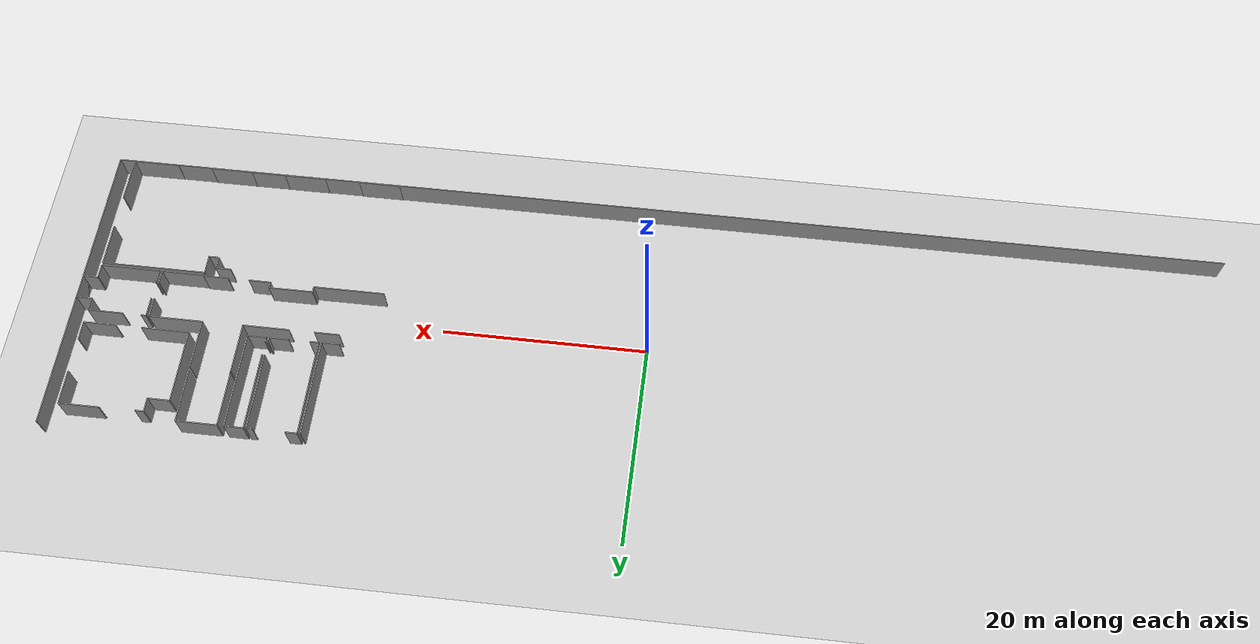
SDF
<sdf version="1.6">
 <world name="default">
  <model name="ground_plane">
   <static>1</static>
   <link name="link">
    <collision name="collision">
     <geometry><plane><normal>0 0 1</normal><size>100 100</size></plane></geometry>
     <surface><friction><ode><mu>100</mu><mu2>50</mu2></ode></friction></surface>
    </collision>
    <visual name="visual">
     <cast_shadows>0</cast_shadows>
     <geometry><plane><normal>0 0 1</normal><size>100 100</size></plane></geometry>
     <material>
      <script><uri>file://media/materials/scripts/gazebo.material</uri><name>Gazebo/Grey</name></script>
     </material>
    </visual>
   </link>
  </model>
  <model name="50056456">
   <static>1</static>
   <link name="Wall_21">
    <collision name="Wall_21_Collision">
     <geometry><box><size>4.18794948032 0.1 2.5</size></box></geometry>
     <pose>2.09397474016 0 1.25 0 0 0</pose>
    </collision>
    <visual name="Wall_21_Visual">
     <pose>2.09397474016 0 1.25 0 0 0</pose>
     <geometry><box><size>4.18794948032 0.1 2.5</size></box></geometry>
     <material>
      <script><uri>file://media/materials/scripts/gazebo.material</uri><name>Gazebo/Grey</name></script>
      <ambient>1 1 1 1</ambient>
     </material>
    </visual>
    <pose>103.634892802 -17.1229871329 0 0 0 3.14159265359</pose>
   </link>
   <link name="Wall_22">
    <collision name="Wall_22_Collision">
     <geometry><box><size>0.0789475913361 0.1 2.5</size></box></geometry>
     <pose>0.0394737956681 0 1.25 0 0 0</pose>
    </collision>
    <visual name="Wall_22_Visual">
     <pose>0.0394737956681 0 1.25 0 0 0</pose>
     <geometry><box><size>0.0789475913361 0.1 2.5</size></box></geometry>
     <material>
      <script><uri>file://media/materials/scripts/gazebo.material</uri><name>Gazebo/Grey</name></script>
      <ambient>1 1 1 1</ambient>
     </material>
    </visual>
    <pose>99.4469433221 -17.1229871329 0 0 0 1.57079632679</pose>
   </link>
   <link name="Wall_23">
    <collision name="Wall_23_Collision">
     <geometry><box><size>2.44263169932 0.1 2.5</size></box></geometry>
     <pose>1.22131584966 0 1.25 0 0 0</pose>
    </collision>
    <visual name="Wall_23_Visual">
     <pose>1.22131584966 0 1.25 0 0 0</pose>
     <geometry><box><size>2.44263169932 0.1 2.5</size></box></geometry>
     <material>
      <script><uri>file://media/materials/scripts/gazebo.material</uri><name>Gazebo/Grey</name></script>
      <ambient>1 1 1 1</ambient>
     </material>
    </visual>
    <pose>99.4469433221 -17.0440395416 0 0 0 3.14159265359</pose>
   </link>
   <link name="Wall_24">
    <collision name="Wall_24_Collision">
     <geometry><box><size>2.13090730435 0.1 2.5</size></box></geometry>
     <pose>1.06545365217 0 1.25 0 0 0</pose>
    </collision>
    <visual name="Wall_24_Visual">
     <pose>1.06545365217 0 1.25 0 0 0</pose>
     <geometry><box><size>2.13090730435 0.1 2.5</size></box></geometry>
     <material>
      <script><uri>file://media/materials/scripts/gazebo.material</uri><name>Gazebo/Grey</name></script>
      <ambient>1 1 1 1</ambient>
     </material>
    </visual>
    <pose>94.9321914733 -17.0440395416 0 0 0 3.14159265359</pose>
   </link>
   <link name="Wall_25">
    <collision name="Wall_25_Collision">
     <geometry><box><size>0.598036475143 0.1 2.5</size></box></geometry>
     <pose>0.299018237571 0 1.25 0 0 0</pose>
    </collision>
    <visual name="Wall_25_Visual">
     <pose>0.299018237571 0 1.25 0 0 0</pose>
     <geometry><box><size>0.598036475143 0.1 2.5</size></box></geometry>
     <material>
      <script><uri>file://media/materials/scripts/gazebo.material</uri><name>Gazebo/Grey</name></script>
      <ambient>1 1 1 1</ambient>
     </material>
    </visual>
    <pose>92.801284169 -17.0440395416 0 0 0 1.57079632679</pose>
   </link>
   <link name="Wall_26">
    <collision name="Wall_26_Collision">
     <geometry><box><size>4.31263923831 0.1 2.5</size></box></geometry>
     <pose>2.15631961915 0 1.25 0 0 0</pose>
    </collision>
    <visual name="Wall_26_Visual">
     <pose>2.15631961915 0 1.25 0 0 0</pose>
     <geometry><box><size>4.31263923831 0.1 2.5</size></box></geometry>
     <material>
      <script><uri>file://media/materials/scripts/gazebo.material</uri><name>Gazebo/Grey</name></script>
      <ambient>1 1 1 1</ambient>
     </material>
    </visual>
    <pose>92.801284169 -16.4460030664 0 0 0 3.14159265359</pose>
   </link>
   <link name="Wall_27">
    <collision name="Wall_27_Collision">
     <geometry><box><size>0.556021447994 0.1 2.5</size></box></geometry>
     <pose>0.278010723997 0 1.25 0 0 0</pose>
    </collision>
    <visual name="Wall_27_Visual">
     <pose>0.278010723997 0 1.25 0 0 0</pose>
     <geometry><box><size>0.556021447994 0.1 2.5</size></box></geometry>
     <material>
      <script><uri>file://media/materials/scripts/gazebo.material</uri><name>Gazebo/Grey</name></script>
      <ambient>1 1 1 1</ambient>
     </material>
    </visual>
    <pose>88.4886449307 -16.4460030664 0 0 0 -1.57079632679</pose>
   </link>
   <link name="Wall_28">
    <collision name="Wall_28_Collision">
     <geometry><box><size>6.95738354807 0.1 2.5</size></box></geometry>
     <pose>3.47869177403 0 1.25 0 0 0</pose>
    </collision>
    <visual name="Wall_28_Visual">
     <pose>3.47869177403 0 1.25 0 0 0</pose>
     <geometry><box><size>6.95738354807 0.1 2.5</size></box></geometry>
     <material>
      <script><uri>file://media/materials/scripts/gazebo.material</uri><name>Gazebo/Grey</name></script>
      <ambient>1 1 1 1</ambient>
     </material>
    </visual>
    <pose>88.4886449307 -17.0020245144 0 0 0 3.14159265359</pose>
   </link>
   <link name="Wall_69">
    <collision name="Wall_69_Collision">
     <geometry><box><size>2.43399151229 0.1 2.5</size></box></geometry>
     <pose>1.21699575614 0 1.25 0 0 0</pose>
    </collision>
    <visual name="Wall_69_Visual">
     <pose>1.21699575614 0 1.25 0 0 0</pose>
     <geometry><box><size>2.43399151229 0.1 2.5</size></box></geometry>
     <material>
      <script><uri>file://media/materials/scripts/gazebo.material</uri><name>Gazebo/Grey</name></script>
      <ambient>1 1 1 1</ambient>
     </material>
    </visual>
    <pose>84.9446435076 -12.0830474448 0 0 0 0.0</pose>
   </link>
   <link name="Wall_70">
    <collision name="Wall_70_Collision">
     <geometry><box><size>4.53626760862 0.1 2.5</size></box></geometry>
     <pose>2.26813380431 0 1.25 0 0 0</pose>
    </collision>
    <visual name="Wall_70_Visual">
     <pose>2.26813380431 0 1.25 0 0 0</pose>
     <geometry><box><size>4.53626760862 0.1 2.5</size></box></geometry>
     <material>
      <script><uri>file://media/materials/scripts/gazebo.material</uri><name>Gazebo/Grey</name></script>
      <ambient>1 1 1 1</ambient>
     </material>
    </visual>
    <pose>89.8510838352 -12.0830474448 0 0 0 0.0</pose>
   </link>
   <link name="Wall_71">
    <collision name="Wall_71_Collision">
     <geometry><box><size>4.99047038195 0.1 2.5</size></box></geometry>
     <pose>2.49523519097 0 1.25 0 0 0</pose>
    </collision>
    <visual name="Wall_71_Visual">
     <pose>2.49523519097 0 1.25 0 0 0</pose>
     <geometry><box><size>4.99047038195 0.1 2.5</size></box></geometry>
     <material>
      <script><uri>file://media/materials/scripts/gazebo.material</uri><name>Gazebo/Grey</name></script>
      <ambient>1 1 1 1</ambient>
     </material>
    </visual>
    <pose>94.3873514438 -12.0830474448 0 0 0 1.57079632679</pose>
   </link>
   <link name="Wall_72">
    <collision name="Wall_72_Collision">
     <geometry><box><size>0.0659026030681 0.1 2.5</size></box></geometry>
     <pose>0.0329513015341 0 1.25 0 0 0</pose>
    </collision>
    <visual name="Wall_72_Visual">
     <pose>0.0329513015341 0 1.25 0 0 0</pose>
     <geometry><box><size>0.0659026030681 0.1 2.5</size></box></geometry>
     <material>
      <script><uri>file://media/materials/scripts/gazebo.material</uri><name>Gazebo/Grey</name></script>
      <ambient>1 1 1 1</ambient>
     </material>
    </visual>
    <pose>94.3873514438 -7.09257706284 0 0 0 0.0</pose>
   </link>
   <link name="Wall_73">
    <collision name="Wall_73_Collision">
     <geometry><box><size>4.96404157455 0.1 2.5</size></box></geometry>
     <pose>2.48202078727 0 1.25 0 0 0</pose>
    </collision>
    <visual name="Wall_73_Visual">
     <pose>2.48202078727 0 1.25 0 0 0</pose>
     <geometry><box><size>4.96404157455 0.1 2.5</size></box></geometry>
     <material>
      <script><uri>file://media/materials/scripts/gazebo.material</uri><name>Gazebo/Grey</name></script>
      <ambient>1 1 1 1</ambient>
     </material>
    </visual>
    <pose>98.3603127409 -7.09257706284 0 0 0 -1.57079632679</pose>
   </link>
   <link name="Wall_74">
    <collision name="Wall_74_Collision">
     <geometry><box><size>5.26017974977 0.1 2.5</size></box></geometry>
     <pose>2.63008987489 0 1.25 0 0 0</pose>
    </collision>
    <visual name="Wall_74_Visual">
     <pose>2.63008987489 0 1.25 0 0 0</pose>
     <geometry><box><size>5.26017974977 0.1 2.5</size></box></geometry>
     <material>
      <script><uri>file://media/materials/scripts/gazebo.material</uri><name>Gazebo/Grey</name></script>
      <ambient>1 1 1 1</ambient>
     </material>
    </visual>
    <pose>98.3603127409 -12.0566186374 0 0 0 0.0</pose>
   </link>
   <link name="Wall_75">
    <collision name="Wall_75_Collision">
     <geometry><box><size>1.95928947168 0.1 2.5</size></box></geometry>
     <pose>0.979644735839 0 1.25 0 0 0</pose>
    </collision>
    <visual name="Wall_75_Visual">
     <pose>0.979644735839 0 1.25 0 0 0</pose>
     <geometry><box><size>1.95928947168 0.1 2.5</size></box></geometry>
     <material>
      <script><uri>file://media/materials/scripts/gazebo.material</uri><name>Gazebo/Grey</name></script>
      <ambient>1 1 1 1</ambient>
     </material>
    </visual>
    <pose>103.620492491 -12.0566186374 0 0 0 -1.57079632679</pose>
   </link>
   <link name="Wall_76">
    <collision name="Wall_76_Collision">
     <geometry><box><size>1.33236078006 0.1 2.5</size></box></geometry>
     <pose>0.666180390029 0 1.25 0 0 0</pose>
    </collision>
    <visual name="Wall_76_Visual">
     <pose>0.666180390029 0 1.25 0 0 0</pose>
     <geometry><box><size>1.33236078006 0.1 2.5</size></box></geometry>
     <material>
      <script><uri>file://media/materials/scripts/gazebo.material</uri><name>Gazebo/Grey</name></script>
      <ambient>1 1 1 1</ambient>
     </material>
    </visual>
    <pose>103.620492491 -15.7907041752 0 0 0 -1.55998799896</pose>
   </link>
   <link name="Wall_168">
    <collision name="Wall_168_Collision">
     <geometry><box><size>1.74701193532 0.1 2.5</size></box></geometry>
     <pose>0.873505967659 0 1.25 0 0 0</pose>
    </collision>
    <visual name="Wall_168_Visual">
     <pose>0.873505967659 0 1.25 0 0 0</pose>
     <geometry><box><size>1.74701193532 0.1 2.5</size></box></geometry>
     <material>
      <script><uri>file://media/materials/scripts/gazebo.material</uri><name>Gazebo/Grey</name></script>
      <ambient>1 1 1 1</ambient>
     </material>
    </visual>
    <pose>86.475650767 -11.0680795914 0 0 0 3.14159265359</pose>
   </link>
   <link name="Wall_173">
    <collision name="Wall_173_Collision">
     <geometry><box><size>9.57282273588 0.1 2.5</size></box></geometry>
     <pose>4.78641136794 0 1.25 0 0 0</pose>
    </collision>
    <visual name="Wall_173_Visual">
     <pose>4.78641136794 0 1.25 0 0 0</pose>
     <geometry><box><size>9.57282273588 0.1 2.5</size></box></geometry>
     <material>
      <script><uri>file://media/materials/scripts/gazebo.material</uri><name>Gazebo/Grey</name></script>
      <ambient>1 1 1 1</ambient>
     </material>
    </visual>
    <pose>86.4671799954 -1.49526060329 0 0 0 -1.56991144958</pose>
   </link>
   <link name="Wall_174">
    <collision name="Wall_174_Collision">
     <geometry><box><size>1.94607506798 0.1 2.5</size></box></geometry>
     <pose>0.973037533989 0 1.25 0 0 0</pose>
    </collision>
    <visual name="Wall_174_Visual">
     <pose>0.973037533989 0 1.25 0 0 0</pose>
     <geometry><box><size>1.94607506798 0.1 2.5</size></box></geometry>
     <material>
      <script><uri>file://media/materials/scripts/gazebo.material</uri><name>Gazebo/Grey</name></script>
      <ambient>1 1 1 1</ambient>
     </material>
    </visual>
    <pose>91.6089383582 -11.0511380482 0 0 0 3.14159265359</pose>
   </link>
   <link name="Wall_175">
    <collision name="Wall_175_Collision">
     <geometry><box><size>0.868762335561 0.1 2.5</size></box></geometry>
     <pose>0.434381167781 0 1.25 0 0 0</pose>
    </collision>
    <visual name="Wall_175_Visual">
     <pose>0.434381167781 0 1.25 0 0 0</pose>
     <geometry><box><size>0.868762335561 0.1 2.5</size></box></geometry>
     <material>
      <script><uri>file://media/materials/scripts/gazebo.material</uri><name>Gazebo/Grey</name></script>
      <ambient>1 1 1 1</ambient>
     </material>
    </visual>
    <pose>87.6247956426 -11.0511380482 0 0 0 3.14159265359</pose>
   </link>
   <link name="Wall_176">
    <collision name="Wall_176_Collision">
     <geometry><box><size>9.57281898808 0.1 2.5</size></box></geometry>
     <pose>4.78640949404 0 1.25 0 0 0</pose>
    </collision>
    <visual name="Wall_176_Visual">
     <pose>4.78640949404 0 1.25 0 0 0</pose>
     <geometry><box><size>9.57281898808 0.1 2.5</size></box></geometry>
     <material>
      <script><uri>file://media/materials/scripts/gazebo.material</uri><name>Gazebo/Grey</name></script>
      <ambient>1 1 1 1</ambient>
     </material>
    </visual>
    <pose>86.7560333071 -11.0511380482 0 0 0 1.57079632679</pose>
   </link>
   <link name="Wall_177">
    <collision name="Wall_177_Collision">
     <geometry><box><size>1.15846272437 0.1 2.5</size></box></geometry>
     <pose>0.579231362185 0 1.25 0 0 0</pose>
    </collision>
    <visual name="Wall_177_Visual">
     <pose>0.579231362185 0 1.25 0 0 0</pose>
     <geometry><box><size>1.15846272437 0.1 2.5</size></box></geometry>
     <material>
      <script><uri>file://media/materials/scripts/gazebo.material</uri><name>Gazebo/Grey</name></script>
      <ambient>1 1 1 1</ambient>
     </material>
    </visual>
    <pose>86.7560333071 -1.47831906008 0 0 0 0.0</pose>
   </link>
   <link name="Wall_178">
    <collision name="Wall_178_Collision">
     <geometry><box><size>0.590921026996 0.1 2.5</size></box></geometry>
     <pose>0.295460513498 0 1.25 0 0 0</pose>
    </collision>
    <visual name="Wall_178_Visual">
     <pose>0.295460513498 0 1.25 0 0 0</pose>
     <geometry><box><size>0.590921026996 0.1 2.5</size></box></geometry>
     <material>
      <script><uri>file://media/materials/scripts/gazebo.material</uri><name>Gazebo/Grey</name></script>
      <ambient>1 1 1 1</ambient>
     </material>
    </visual>
    <pose>90.9995510491 -1.47831906008 0 0 0 0.0</pose>
   </link>
   <link name="Wall_179">
    <collision name="Wall_179_Collision">
     <geometry><box><size>7.67350257935 0.1 2.5</size></box></geometry>
     <pose>3.83675128967 0 1.25 0 0 0</pose>
    </collision>
    <visual name="Wall_179_Visual">
     <pose>3.83675128967 0 1.25 0 0 0</pose>
     <geometry><box><size>7.67350257935 0.1 2.5</size></box></geometry>
     <material>
      <script><uri>file://media/materials/scripts/gazebo.material</uri><name>Gazebo/Grey</name></script>
      <ambient>1 1 1 1</ambient>
     </material>
    </visual>
    <pose>91.5904720761 -1.47831906008 0 0 0 -1.57079632679</pose>
   </link>
   <link name="Wall_180">
    <collision name="Wall_180_Collision">
     <geometry><box><size>0.512983577932 0.1 2.5</size></box></geometry>
     <pose>0.256491788966 0 1.25 0 0 0</pose>
    </collision>
    <visual name="Wall_180_Visual">
     <pose>0.256491788966 0 1.25 0 0 0</pose>
     <geometry><box><size>0.512983577932 0.1 2.5</size></box></geometry>
     <material>
      <script><uri>file://media/materials/scripts/gazebo.material</uri><name>Gazebo/Grey</name></script>
      <ambient>1 1 1 1</ambient>
     </material>
    </visual>
    <pose>91.5904720761 -10.5384869508 0 0 0 -1.53479074407</pose>
   </link>
   <link name="Wall_181">
    <collision name="Wall_181_Collision">
     <geometry><box><size>1.82104647912 0.1 2.5</size></box></geometry>
     <pose>0.910523239562 0 1.25 0 0 0</pose>
    </collision>
    <visual name="Wall_181_Visual">
     <pose>0.910523239562 0 1.25 0 0 0</pose>
     <geometry><box><size>1.82104647912 0.1 2.5</size></box></geometry>
     <material>
      <script><uri>file://media/materials/scripts/gazebo.material</uri><name>Gazebo/Grey</name></script>
      <ambient>1 1 1 1</ambient>
     </material>
    </visual>
    <pose>93.6729265669 -11.0460555852 0 0 0 3.14159265359</pose>
   </link>
   <link name="Wall_182">
    <collision name="Wall_182_Collision">
     <geometry><box><size>0.474532625177 0.1 2.5</size></box></geometry>
     <pose>0.237266312588 0 1.25 0 0 0</pose>
    </collision>
    <visual name="Wall_182_Visual">
     <pose>0.237266312588 0 1.25 0 0 0</pose>
     <geometry><box><size>0.474532625177 0.1 2.5</size></box></geometry>
     <material>
      <script><uri>file://media/materials/scripts/gazebo.material</uri><name>Gazebo/Grey</name></script>
      <ambient>1 1 1 1</ambient>
     </material>
    </visual>
    <pose>91.8518800878 -11.0460555852 0 0 0 1.57079632679</pose>
   </link>
   <link name="Wall_183">
    <collision name="Wall_183_Collision">
     <geometry><box><size>7.71636468366 0.1 2.5</size></box></geometry>
     <pose>3.85818234183 0 1.25 0 0 0</pose>
    </collision>
    <visual name="Wall_183_Visual">
     <pose>3.85818234183 0 1.25 0 0 0</pose>
     <geometry><box><size>7.71636468366 0.1 2.5</size></box></geometry>
     <material>
      <script><uri>file://media/materials/scripts/gazebo.material</uri><name>Gazebo/Grey</name></script>
      <ambient>1 1 1 1</ambient>
     </material>
    </visual>
    <pose>91.8518800878 -9.18638238757 0 0 0 1.57079632679</pose>
   </link>
   <link name="Wall_184">
    <collision name="Wall_184_Collision">
     <geometry><box><size>1.86746630751 0.1 2.5</size></box></geometry>
     <pose>0.933733153753 0 1.25 0 0 0</pose>
    </collision>
    <visual name="Wall_184_Visual">
     <pose>0.933733153753 0 1.25 0 0 0</pose>
     <geometry><box><size>1.86746630751 0.1 2.5</size></box></geometry>
     <material>
      <script><uri>file://media/materials/scripts/gazebo.material</uri><name>Gazebo/Grey</name></script>
      <ambient>1 1 1 1</ambient>
     </material>
    </visual>
    <pose>91.8518800878 -1.47001770391 0 0 0 0.0</pose>
   </link>
   <link name="Wall_185">
    <collision name="Wall_185_Collision">
     <geometry><box><size>9.57615039065 0.1 2.5</size></box></geometry>
     <pose>4.78807519533 0 1.25 0 0 0</pose>
    </collision>
    <visual name="Wall_185_Visual">
     <pose>4.78807519533 0 1.25 0 0 0</pose>
     <geometry><box><size>9.57615039065 0.1 2.5</size></box></geometry>
     <material>
      <script><uri>file://media/materials/scripts/gazebo.material</uri><name>Gazebo/Grey</name></script>
      <ambient>1 1 1 1</ambient>
     </material>
    </visual>
    <pose>93.7193463953 -1.47001770391 0 0 0 -1.57564378723</pose>
   </link>
   <link name="Wall_186">
    <collision name="Wall_186_Collision">
     <geometry><box><size>0.10317399812 0.1 2.5</size></box></geometry>
     <pose>0.0515869990598 0 1.25 0 0 0</pose>
    </collision>
    <visual name="Wall_186_Visual">
     <pose>0.0515869990598 0 1.25 0 0 0</pose>
     <geometry><box><size>0.10317399812 0.1 2.5</size></box></geometry>
     <material>
      <script><uri>file://media/materials/scripts/gazebo.material</uri><name>Gazebo/Grey</name></script>
      <ambient>1 1 1 1</ambient>
     </material>
    </visual>
    <pose>94.4691790975 -6.87132050859 0 0 0 3.14159265359</pose>
   </link>
   <link name="Wall_187">
    <collision name="Wall_187_Collision">
     <geometry><box><size>5.38571658492 0.1 2.5</size></box></geometry>
     <pose>2.69285829246 0 1.25 0 0 0</pose>
    </collision>
    <visual name="Wall_187_Visual">
     <pose>2.69285829246 0 1.25 0 0 0</pose>
     <geometry><box><size>5.38571658492 0.1 2.5</size></box></geometry>
     <material>
      <script><uri>file://media/materials/scripts/gazebo.material</uri><name>Gazebo/Grey</name></script>
      <ambient>1 1 1 1</ambient>
     </material>
    </visual>
    <pose>94.3660050994 -6.87132050859 0 0 0 1.57079632679</pose>
   </link>
   <link name="Wall_188">
    <collision name="Wall_188_Collision">
     <geometry><box><size>3.97702726741 0.1 2.5</size></box></geometry>
     <pose>1.98851363371 0 1.25 0 0 0</pose>
    </collision>
    <visual name="Wall_188_Visual">
     <pose>1.98851363371 0 1.25 0 0 0</pose>
     <geometry><box><size>3.97702726741 0.1 2.5</size></box></geometry>
     <material>
      <script><uri>file://media/materials/scripts/gazebo.material</uri><name>Gazebo/Grey</name></script>
      <ambient>1 1 1 1</ambient>
     </material>
    </visual>
    <pose>94.3660050994 -1.48560392366 0 0 0 0.0</pose>
   </link>
   <link name="Wall_189">
    <collision name="Wall_189_Collision">
     <geometry><box><size>5.38574709187 0.1 2.5</size></box></geometry>
     <pose>2.69287354594 0 1.25 0 0 0</pose>
    </collision>
    <visual name="Wall_189_Visual">
     <pose>2.69287354594 0 1.25 0 0 0</pose>
     <geometry><box><size>5.38574709187 0.1 2.5</size></box></geometry>
     <material>
      <script><uri>file://media/materials/scripts/gazebo.material</uri><name>Gazebo/Grey</name></script>
      <ambient>1 1 1 1</ambient>
     </material>
    </visual>
    <pose>98.3430323668 -1.48560392366 0 0 0 -1.56743050119</pose>
   </link>
   <link name="Wall_190">
    <collision name="Wall_190_Collision">
     <geometry><box><size>5.77232260087 0.1 2.5</size></box></geometry>
     <pose>2.88616130043 0 1.25 0 0 0</pose>
    </collision>
    <visual name="Wall_190_Visual">
     <pose>2.88616130043 0 1.25 0 0 0</pose>
     <geometry><box><size>5.77232260087 0.1 2.5</size></box></geometry>
     <material>
      <script><uri>file://media/materials/scripts/gazebo.material</uri><name>Gazebo/Grey</name></script>
      <ambient>1 1 1 1</ambient>
     </material>
    </visual>
    <pose>109.69403573 -17.1358627057 0 0 0 3.14159265359</pose>
   </link>
   <link name="Wall_191">
    <collision name="Wall_191_Collision">
     <geometry><box><size>1.31008953606 0.1 2.5</size></box></geometry>
     <pose>0.655044768028 0 1.25 0 0 0</pose>
    </collision>
    <visual name="Wall_191_Visual">
     <pose>0.655044768028 0 1.25 0 0 0</pose>
     <geometry><box><size>1.31008953606 0.1 2.5</size></box></geometry>
     <material>
      <script><uri>file://media/materials/scripts/gazebo.material</uri><name>Gazebo/Grey</name></script>
      <ambient>1 1 1 1</ambient>
     </material>
    </visual>
    <pose>103.921713129 -17.1358627057 0 0 0 1.57079632679</pose>
   </link>
   <link name="Wall_192">
    <collision name="Wall_192_Collision">
     <geometry><box><size>1.91066724268 0.1 2.5</size></box></geometry>
     <pose>0.95533362134 0 1.25 0 0 0</pose>
    </collision>
    <visual name="Wall_192_Visual">
     <pose>0.95533362134 0 1.25 0 0 0</pose>
     <geometry><box><size>1.91066724268 0.1 2.5</size></box></geometry>
     <material>
      <script><uri>file://media/materials/scripts/gazebo.material</uri><name>Gazebo/Grey</name></script>
      <ambient>1 1 1 1</ambient>
     </material>
    </visual>
    <pose>103.921713129 -14.0159081091 0 0 0 1.57079632679</pose>
   </link>
   <link name="Wall_193">
    <collision name="Wall_193_Collision">
     <geometry><box><size>0.490118844926 0.1 2.5</size></box></geometry>
     <pose>0.245059422463 0 1.25 0 0 0</pose>
    </collision>
    <visual name="Wall_193_Visual">
     <pose>0.245059422463 0 1.25 0 0 0</pose>
     <geometry><box><size>0.490118844926 0.1 2.5</size></box></geometry>
     <material>
      <script><uri>file://media/materials/scripts/gazebo.material</uri><name>Gazebo/Grey</name></script>
      <ambient>1 1 1 1</ambient>
     </material>
    </visual>
    <pose>103.921713129 -12.1052408664 0 0 0 0.0</pose>
   </link>
   <link name="Wall_194">
    <collision name="Wall_194_Collision">
     <geometry><box><size>3.4330343151 0.1 2.5</size></box></geometry>
     <pose>1.71651715755 0 1.25 0 0 0</pose>
    </collision>
    <visual name="Wall_194_Visual">
     <pose>1.71651715755 0 1.25 0 0 0</pose>
     <geometry><box><size>3.4330343151 0.1 2.5</size></box></geometry>
     <material>
      <script><uri>file://media/materials/scripts/gazebo.material</uri><name>Gazebo/Grey</name></script>
      <ambient>1 1 1 1</ambient>
     </material>
    </visual>
    <pose>106.222544112 -12.1052408664 0 0 0 0.0</pose>
   </link>
   <link name="Wall_195">
    <collision name="Wall_195_Collision">
     <geometry><box><size>1.28111949718 0.1 2.5</size></box></geometry>
     <pose>0.640559748588 0 1.25 0 0 0</pose>
    </collision>
    <visual name="Wall_195_Visual">
     <pose>0.640559748588 0 1.25 0 0 0</pose>
     <geometry><box><size>1.28111949718 0.1 2.5</size></box></geometry>
     <material>
      <script><uri>file://media/materials/scripts/gazebo.material</uri><name>Gazebo/Grey</name></script>
      <ambient>1 1 1 1</ambient>
     </material>
    </visual>
    <pose>109.655578427 -12.1052408664 0 0 0 -1.57079632679</pose>
   </link>
   <link name="Wall_196">
    <collision name="Wall_196_Collision">
     <geometry><box><size>1.52897427427 0.1 2.5</size></box></geometry>
     <pose>0.764487137133 0 1.25 0 0 0</pose>
    </collision>
    <visual name="Wall_196_Visual">
     <pose>0.764487137133 0 1.25 0 0 0</pose>
     <geometry><box><size>1.52897427427 0.1 2.5</size></box></geometry>
     <material>
      <script><uri>file://media/materials/scripts/gazebo.material</uri><name>Gazebo/Grey</name></script>
      <ambient>1 1 1 1</ambient>
     </material>
    </visual>
    <pose>109.655578427 -13.3863603636 0 0 0 0.0</pose>
   </link>
   <link name="Wall_197">
    <collision name="Wall_197_Collision">
     <geometry><box><size>2.37266312588 0.1 2.5</size></box></geometry>
     <pose>1.18633156294 0 1.25 0 0 0</pose>
    </collision>
    <visual name="Wall_197_Visual">
     <pose>1.18633156294 0 1.25 0 0 0</pose>
     <geometry><box><size>2.37266312588 0.1 2.5</size></box></geometry>
     <material>
      <script><uri>file://media/materials/scripts/gazebo.material</uri><name>Gazebo/Grey</name></script>
      <ambient>1 1 1 1</ambient>
     </material>
    </visual>
    <pose>111.184552701 -13.3863603636 0 0 0 -1.57079632679</pose>
   </link>
   <link name="Wall_198">
    <collision name="Wall_198_Collision">
     <geometry><box><size>1.48153795329 0.1 2.5</size></box></geometry>
     <pose>0.740768976646 0 1.25 0 0 0</pose>
    </collision>
    <visual name="Wall_198_Visual">
     <pose>0.740768976646 0 1.25 0 0 0</pose>
     <geometry><box><size>1.48153795329 0.1 2.5</size></box></geometry>
     <material>
      <script><uri>file://media/materials/scripts/gazebo.material</uri><name>Gazebo/Grey</name></script>
      <ambient>1 1 1 1</ambient>
     </material>
    </visual>
    <pose>111.184552701 -15.7590234894 0 0 0 3.14159265359</pose>
   </link>
   <link name="Wall_199">
    <collision name="Wall_199_Collision">
     <geometry><box><size>1.37686849418 0.1 2.5</size></box></geometry>
     <pose>0.688434247089 0 1.25 0 0 0</pose>
    </collision>
    <visual name="Wall_199_Visual">
     <pose>0.688434247089 0 1.25 0 0 0</pose>
     <geometry><box><size>1.37686849418 0.1 2.5</size></box></geometry>
     <material>
      <script><uri>file://media/materials/scripts/gazebo.material</uri><name>Gazebo/Grey</name></script>
      <ambient>1 1 1 1</ambient>
     </material>
    </visual>
    <pose>109.703014748 -15.7590234894 0 0 0 -1.57731770598</pose>
   </link>
   <link name="Wall_200">
    <collision name="Wall_200_Collision">
     <geometry><box><size>3.17382870406 0.1 2.5</size></box></geometry>
     <pose>1.58691435203 0 1.25 0 0 0</pose>
    </collision>
    <visual name="Wall_200_Visual">
     <pose>1.58691435203 0 1.25 0 0 0</pose>
     <geometry><box><size>3.17382870406 0.1 2.5</size></box></geometry>
     <material>
      <script><uri>file://media/materials/scripts/gazebo.material</uri><name>Gazebo/Grey</name></script>
      <ambient>1 1 1 1</ambient>
     </material>
    </visual>
    <pose>109.716567982 -10.7602517513 0 0 0 3.14159265359</pose>
   </link>
   <link name="Wall_201">
    <collision name="Wall_201_Collision">
     <geometry><box><size>4.66299035179 0.1 2.5</size></box></geometry>
     <pose>2.3314951759 0 1.25 0 0 0</pose>
    </collision>
    <visual name="Wall_201_Visual">
     <pose>2.3314951759 0 1.25 0 0 0</pose>
     <geometry><box><size>4.66299035179 0.1 2.5</size></box></geometry>
     <material>
      <script><uri>file://media/materials/scripts/gazebo.material</uri><name>Gazebo/Grey</name></script>
      <ambient>1 1 1 1</ambient>
     </material>
    </visual>
    <pose>104.032002575 -10.7602517513 0 0 0 3.14159265359</pose>
   </link>
   <link name="Wall_202">
    <collision name="Wall_202_Collision">
     <geometry><box><size>7.2884213023 0.1 2.5</size></box></geometry>
     <pose>3.64421065115 0 1.25 0 0 0</pose>
    </collision>
    <visual name="Wall_202_Visual">
     <pose>3.64421065115 0 1.25 0 0 0</pose>
     <geometry><box><size>7.2884213023 0.1 2.5</size></box></geometry>
     <material>
      <script><uri>file://media/materials/scripts/gazebo.material</uri><name>Gazebo/Grey</name></script>
      <ambient>1 1 1 1</ambient>
     </material>
    </visual>
    <pose>99.3690122233 -10.7602517513 0 0 0 1.57079632679</pose>
   </link>
   <link name="Wall_203">
    <collision name="Wall_203_Collision">
     <geometry><box><size>2.14225813829 0.1 2.5</size></box></geometry>
     <pose>1.07112906915 0 1.25 0 0 0</pose>
    </collision>
    <visual name="Wall_203_Visual">
     <pose>1.07112906915 0 1.25 0 0 0</pose>
     <geometry><box><size>2.14225813829 0.1 2.5</size></box></geometry>
     <material>
      <script><uri>file://media/materials/scripts/gazebo.material</uri><name>Gazebo/Grey</name></script>
      <ambient>1 1 1 1</ambient>
     </material>
    </visual>
    <pose>99.3690122233 -3.47183044904 0 0 0 0.0</pose>
   </link>
   <link name="Wall_204">
    <collision name="Wall_204_Collision">
     <geometry><box><size>1.35498462555 0.1 2.5</size></box></geometry>
     <pose>0.677492312775 0 1.25 0 0 0</pose>
    </collision>
    <visual name="Wall_204_Visual">
     <pose>0.677492312775 0 1.25 0 0 0</pose>
     <geometry><box><size>1.35498462555 0.1 2.5</size></box></geometry>
     <material>
      <script><uri>file://media/materials/scripts/gazebo.material</uri><name>Gazebo/Grey</name></script>
      <ambient>1 1 1 1</ambient>
     </material>
    </visual>
    <pose>101.511270362 -3.47183044904 0 0 0 1.57079632679</pose>
   </link>
   <link name="Wall_205">
    <collision name="Wall_205_Collision">
     <geometry><box><size>0.827594385573 0.1 2.5</size></box></geometry>
     <pose>0.413797192786 0 1.25 0 0 0</pose>
    </collision>
    <visual name="Wall_205_Visual">
     <pose>0.413797192786 0 1.25 0 0 0</pose>
     <geometry><box><size>0.827594385573 0.1 2.5</size></box></geometry>
     <material>
      <script><uri>file://media/materials/scripts/gazebo.material</uri><name>Gazebo/Grey</name></script>
      <ambient>1 1 1 1</ambient>
     </material>
    </visual>
    <pose>101.511270362 -2.11684582349 0 0 0 0.0</pose>
   </link>
   <link name="Wall_206">
    <collision name="Wall_206_Collision">
     <geometry><box><size>3.92502550839 0.1 2.5</size></box></geometry>
     <pose>1.9625127542 0 1.25 0 0 0</pose>
    </collision>
    <visual name="Wall_206_Visual">
     <pose>1.9625127542 0 1.25 0 0 0</pose>
     <geometry><box><size>3.92502550839 0.1 2.5</size></box></geometry>
     <material>
      <script><uri>file://media/materials/scripts/gazebo.material</uri><name>Gazebo/Grey</name></script>
      <ambient>1 1 1 1</ambient>
     </material>
    </visual>
    <pose>105.781047496 -2.06805417906 0 0 0 0.00211498303429</pose>
   </link>
   <link name="Wall_207">
    <collision name="Wall_207_Collision">
     <geometry><box><size>3.38763097931 0.1 2.5</size></box></geometry>
     <pose>1.69381548965 0 1.25 0 0 0</pose>
    </collision>
    <visual name="Wall_207_Visual">
     <pose>1.69381548965 0 1.25 0 0 0</pose>
     <geometry><box><size>3.38763097931 0.1 2.5</size></box></geometry>
     <material>
      <script><uri>file://media/materials/scripts/gazebo.material</uri><name>Gazebo/Grey</name></script>
      <ambient>1 1 1 1</ambient>
     </material>
    </visual>
    <pose>109.706064225 -2.05975282288 0 0 0 -1.57079632679</pose>
   </link>
   <link name="Wall_208">
    <collision name="Wall_208_Collision">
     <geometry><box><size>1.88392888624 0.1 2.5</size></box></geometry>
     <pose>0.941964443122 0 1.25 0 0 0</pose>
    </collision>
    <visual name="Wall_208_Visual">
     <pose>0.941964443122 0 1.25 0 0 0</pose>
     <geometry><box><size>1.88392888624 0.1 2.5</size></box></geometry>
     <material>
      <script><uri>file://media/materials/scripts/gazebo.material</uri><name>Gazebo/Grey</name></script>
      <ambient>1 1 1 1</ambient>
     </material>
    </visual>
    <pose>109.706064225 -8.87635214692 0 0 0 -1.565220845</pose>
   </link>
   <link name="Wall_209">
    <collision name="Wall_209_Collision">
     <geometry><box><size>4.55727512219 0.1 2.5</size></box></geometry>
     <pose>2.2786375611 0 1.25 0 0 0</pose>
    </collision>
    <visual name="Wall_209_Visual">
     <pose>2.2786375611 0 1.25 0 0 0</pose>
     <geometry><box><size>4.55727512219 0.1 2.5</size></box></geometry>
     <material>
      <script><uri>file://media/materials/scripts/gazebo.material</uri><name>Gazebo/Grey</name></script>
      <ambient>1 1 1 1</ambient>
     </material>
    </visual>
    <pose>109.668623415 -29.4665955122 0 0 0 3.14159265359</pose>
   </link>
   <link name="Wall_210">
    <collision name="Wall_210_Collision">
     <geometry><box><size>4.15660762539 0.1 2.5</size></box></geometry>
     <pose>2.07830381269 0 1.25 0 0 0</pose>
    </collision>
    <visual name="Wall_210_Visual">
     <pose>2.07830381269 0 1.25 0 0 0</pose>
     <geometry><box><size>4.15660762539 0.1 2.5</size></box></geometry>
     <material>
      <script><uri>file://media/materials/scripts/gazebo.material</uri><name>Gazebo/Grey</name></script>
      <ambient>1 1 1 1</ambient>
     </material>
    </visual>
    <pose>101.655273479 -29.4665955122 0 0 0 3.14159265359</pose>
   </link>
   <link name="Wall_211">
    <collision name="Wall_211_Collision">
     <geometry><box><size>3.42032815769 0.1 2.5</size></box></geometry>
     <pose>1.71016407885 0 1.25 0 0 0</pose>
    </collision>
    <visual name="Wall_211_Visual">
     <pose>1.71016407885 0 1.25 0 0 0</pose>
     <geometry><box><size>3.42032815769 0.1 2.5</size></box></geometry>
     <material>
      <script><uri>file://media/materials/scripts/gazebo.material</uri><name>Gazebo/Grey</name></script>
      <ambient>1 1 1 1</ambient>
     </material>
    </visual>
    <pose>97.4986658535 -29.4665955122 0 0 0 3.14159265359</pose>
   </link>
   <link name="Wall_212">
    <collision name="Wall_212_Collision">
     <geometry><box><size>4.137633097 0.1 2.5</size></box></geometry>
     <pose>2.0688165485 0 1.25 0 0 0</pose>
    </collision>
    <visual name="Wall_212_Visual">
     <pose>2.0688165485 0 1.25 0 0 0</pose>
     <geometry><box><size>4.137633097 0.1 2.5</size></box></geometry>
     <material>
      <script><uri>file://media/materials/scripts/gazebo.material</uri><name>Gazebo/Grey</name></script>
      <ambient>1 1 1 1</ambient>
     </material>
    </visual>
    <pose>94.0783376958 -29.4665955122 0 0 0 3.14159265359</pose>
   </link>
   <link name="Wall_213">
    <collision name="Wall_213_Collision">
     <geometry><box><size>4.11984447663 0.1 2.5</size></box></geometry>
     <pose>2.05992223832 0 1.25 0 0 0</pose>
    </collision>
    <visual name="Wall_213_Visual">
     <pose>2.05992223832 0 1.25 0 0 0</pose>
     <geometry><box><size>4.11984447663 0.1 2.5</size></box></geometry>
     <material>
      <script><uri>file://media/materials/scripts/gazebo.material</uri><name>Gazebo/Grey</name></script>
      <ambient>1 1 1 1</ambient>
     </material>
    </visual>
    <pose>86.4307556775 -29.4665955122 0 0 0 3.14159265359</pose>
   </link>
   <link name="Wall_224">
    <collision name="Wall_224_Collision">
     <geometry><box><size>1.49254995638 0.1 2.5</size></box></geometry>
     <pose>0.746274978188 0 1.25 0 0 0</pose>
    </collision>
    <visual name="Wall_224_Visual">
     <pose>0.746274978188 0 1.25 0 0 0</pose>
     <geometry><box><size>1.49254995638 0.1 2.5</size></box></geometry>
     <material>
      <script><uri>file://media/materials/scripts/gazebo.material</uri><name>Gazebo/Grey</name></script>
      <ambient>1 1 1 1</ambient>
     </material>
    </visual>
    <pose>96.9819487857 -18.0457929913 0 0 0 0.0</pose>
   </link>
   <link name="Wall_225">
    <collision name="Wall_225_Collision">
     <geometry><box><size>1.20420489102 0.1 2.5</size></box></geometry>
     <pose>0.602102445512 0 1.25 0 0 0</pose>
    </collision>
    <visual name="Wall_225_Visual">
     <pose>0.602102445512 0 1.25 0 0 0</pose>
     <geometry><box><size>1.20420489102 0.1 2.5</size></box></geometry>
     <material>
      <script><uri>file://media/materials/scripts/gazebo.material</uri><name>Gazebo/Grey</name></script>
      <ambient>1 1 1 1</ambient>
     </material>
    </visual>
    <pose>98.4744987421 -18.0457929913 0 0 0 -1.57079632679</pose>
   </link>
   <link name="Wall_226">
    <collision name="Wall_226_Collision">
     <geometry><box><size>0.986844891701 0.1 2.5</size></box></geometry>
     <pose>0.493422445851 0 1.25 0 0 0</pose>
    </collision>
    <visual name="Wall_226_Visual">
     <pose>0.493422445851 0 1.25 0 0 0</pose>
     <geometry><box><size>0.986844891701 0.1 2.5</size></box></geometry>
     <material>
      <script><uri>file://media/materials/scripts/gazebo.material</uri><name>Gazebo/Grey</name></script>
      <ambient>1 1 1 1</ambient>
     </material>
    </visual>
    <pose>98.4744987421 -19.2499978823 0 0 0 0.0</pose>
   </link>
   <link name="Wall_227">
    <collision name="Wall_227_Collision">
     <geometry><box><size>1.83527737542 0.1 2.5</size></box></geometry>
     <pose>0.917638687708 0 1.25 0 0 0</pose>
    </collision>
    <visual name="Wall_227_Visual">
     <pose>0.917638687708 0 1.25 0 0 0</pose>
     <geometry><box><size>1.83527737542 0.1 2.5</size></box></geometry>
     <material>
      <script><uri>file://media/materials/scripts/gazebo.material</uri><name>Gazebo/Grey</name></script>
      <ambient>1 1 1 1</ambient>
     </material>
    </visual>
    <pose>99.4613436338 -19.2499978823 0 0 0 1.57079632679</pose>
   </link>
   <link name="Wall_228">
    <collision name="Wall_228_Collision">
     <geometry><box><size>10.2242213243 0.1 2.5</size></box></geometry>
     <pose>5.11211066216 0 1.25 0 0 0</pose>
    </collision>
    <visual name="Wall_228_Visual">
     <pose>5.11211066216 0 1.25 0 0 0</pose>
     <geometry><box><size>10.2242213243 0.1 2.5</size></box></geometry>
     <material>
      <script><uri>file://media/materials/scripts/gazebo.material</uri><name>Gazebo/Grey</name></script>
      <ambient>1 1 1 1</ambient>
     </material>
    </visual>
    <pose>99.4613436338 -17.4147205069 0 0 0 0.0</pose>
   </link>
   <link name="Wall_229">
    <collision name="Wall_229_Collision">
     <geometry><box><size>4.21759718093 0.1 2.5</size></box></geometry>
     <pose>2.10879859046 0 1.25 0 0 0</pose>
    </collision>
    <visual name="Wall_229_Visual">
     <pose>2.10879859046 0 1.25 0 0 0</pose>
     <geometry><box><size>4.21759718093 0.1 2.5</size></box></geometry>
     <material>
      <script><uri>file://media/materials/scripts/gazebo.material</uri><name>Gazebo/Grey</name></script>
      <ambient>1 1 1 1</ambient>
     </material>
    </visual>
    <pose>109.685564958 -17.4147205069 0 0 0 -1.57079632679</pose>
   </link>
   <link name="Wall_230">
    <collision name="Wall_230_Collision">
     <geometry><box><size>4.37569457576 0.1 2.5</size></box></geometry>
     <pose>2.18784728788 0 1.25 0 0 0</pose>
    </collision>
    <visual name="Wall_230_Visual">
     <pose>2.18784728788 0 1.25 0 0 0</pose>
     <geometry><box><size>4.37569457576 0.1 2.5</size></box></geometry>
     <material>
      <script><uri>file://media/materials/scripts/gazebo.material</uri><name>Gazebo/Grey</name></script>
      <ambient>1 1 1 1</ambient>
     </material>
    </visual>
    <pose>109.685564958 -25.0909337332 0 0 0 -1.57466807452</pose>
   </link>
   <link name="Wall_265">
    <collision name="Wall_265_Collision">
     <geometry><box><size>29.4986150288 0.1 2.5</size></box></geometry>
     <pose>14.7493075144 0 1.25 0 0 0</pose>
    </collision>
    <visual name="Wall_265_Visual">
     <pose>14.7493075144 0 1.25 0 0 0</pose>
     <geometry><box><size>29.4986150288 0.1 2.5</size></box></geometry>
     <material>
      <script><uri>file://media/materials/scripts/gazebo.material</uri><name>Gazebo/Grey</name></script>
      <ambient>1 1 1 1</ambient>
     </material>
    </visual>
    <pose>111.184552701 -29.4986150288 0 0 0 1.57079632679</pose>
   </link>
   <link name="Wall_266">
    <collision name="Wall_266_Collision">
     <geometry><box><size>111.184552701 0.1 2.5</size></box></geometry>
     <pose>55.5922763505 0 1.25 0 0 0</pose>
    </collision>
    <visual name="Wall_266_Visual">
     <pose>55.5922763505 0 1.25 0 0 0</pose>
     <geometry><box><size>111.184552701 0.1 2.5</size></box></geometry>
     <material>
      <script><uri>file://media/materials/scripts/gazebo.material</uri><name>Gazebo/Grey</name></script>
      <ambient>1 1 1 1</ambient>
     </material>
    </visual>
    <pose>111.184552701 -29.4986150288 0 0 0 3.14159265359</pose>
   </link>
   <pose>-55.55 14.7486150288 0 0 0 0</pose>
  </model>
 </world>
</sdf>
